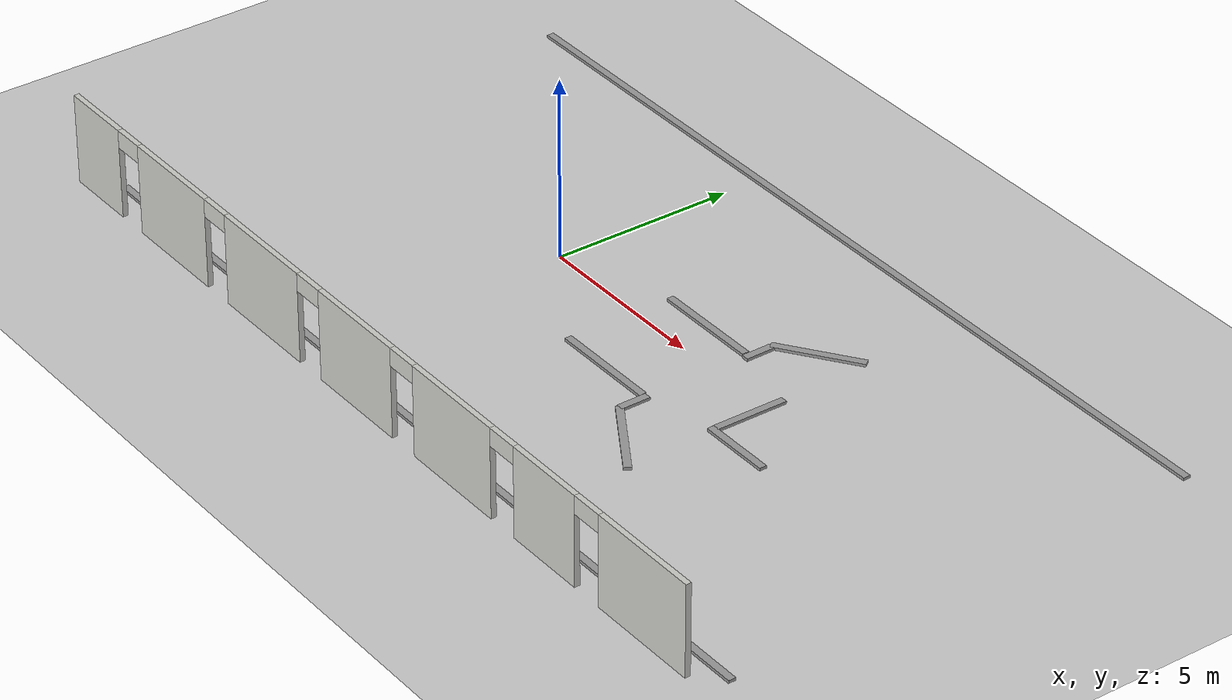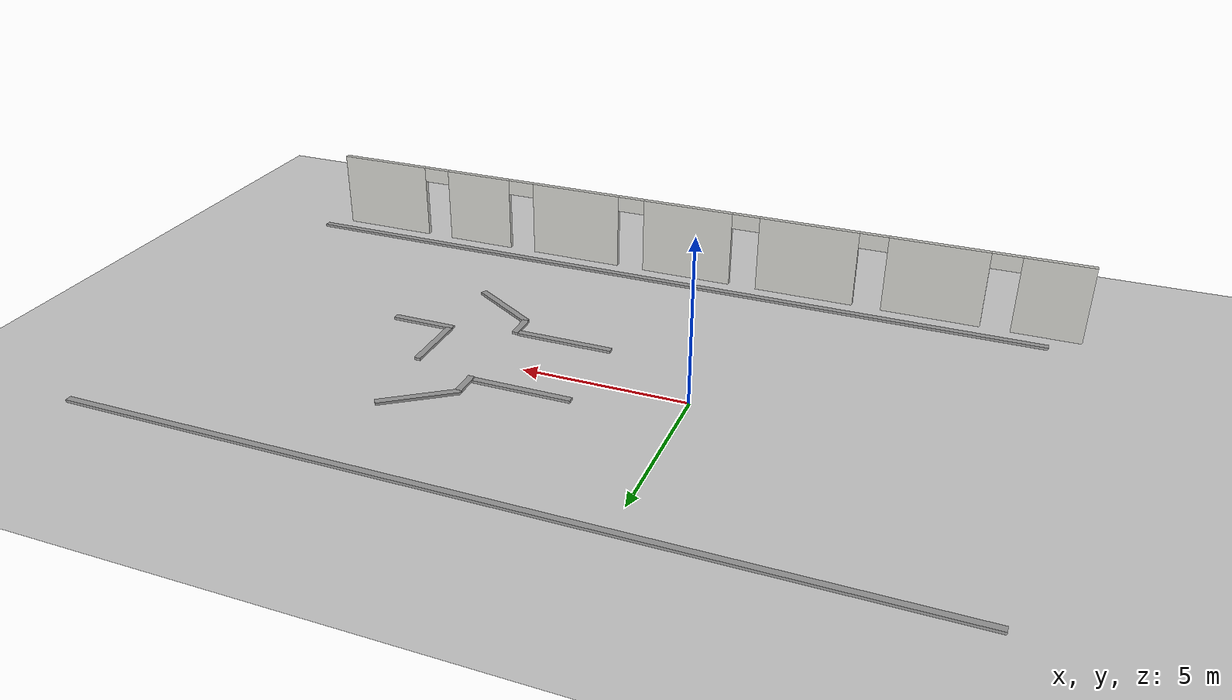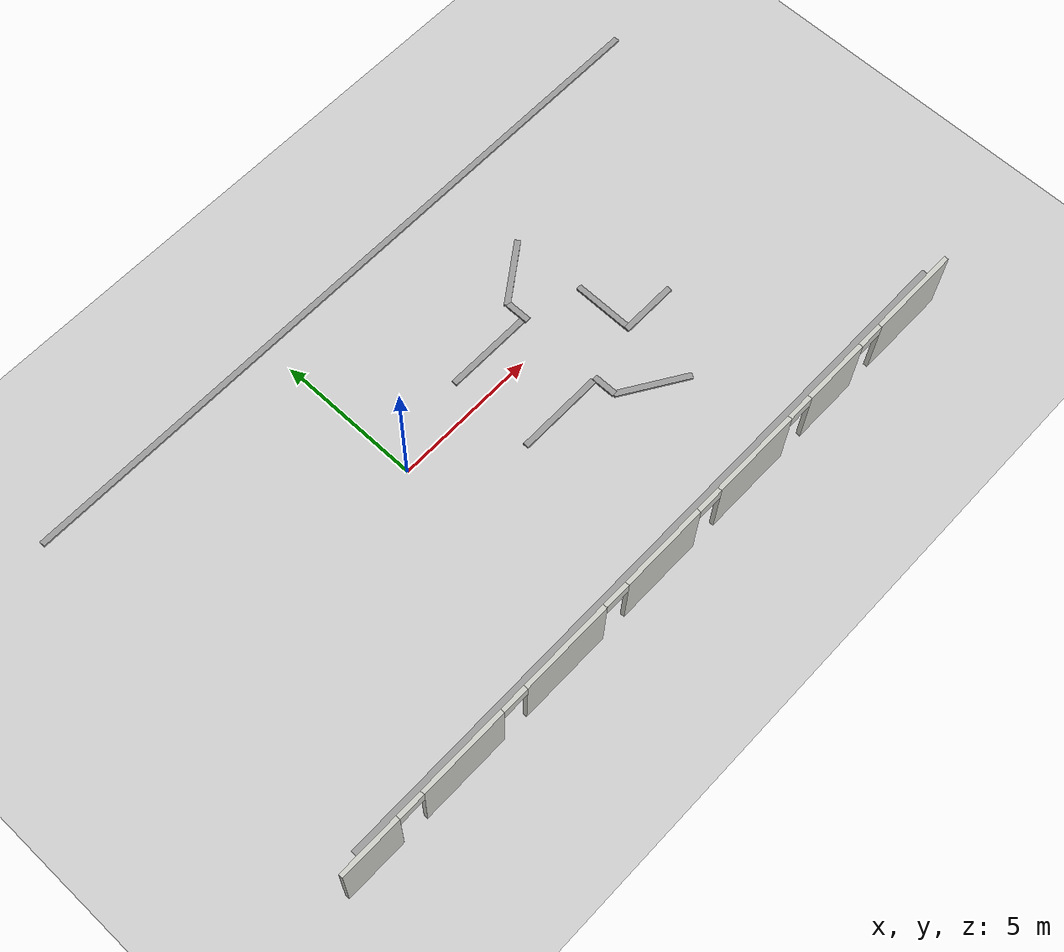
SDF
<sdf version="1.6">
 <world name="default">
  <model name="ground_plane">
   <static>1</static>
   <link name="link">
    <collision name="collision">
     <geometry><plane><normal>0 0 1</normal><size>100 100</size></plane></geometry>
     <surface><friction><ode><mu>100</mu><mu2>50</mu2></ode></friction></surface>
    </collision>
    <visual name="visual">
     <cast_shadows>0</cast_shadows>
     <geometry><plane><normal>0 0 1</normal><size>100 100</size></plane></geometry>
     <material>
      <script><uri>file://media/materials/scripts/gazebo.material</uri><name>Gazebo/Grey</name></script>
     </material>
    </visual>
   </link>
  </model>
  <model name="brick_box_3x1x3">
   <link name="link_1_clone_0">
    <pose>10.5728 -2.79376 0.5 0 -0 0</pose>
    <inertial>
     <mass>1</mass>
     <inertia>
      <ixx>0.166667</ixx>
      <ixy>0</ixy>
      <ixz>0</ixz>
      <iyy>0.166667</iyy>
      <iyz>0</iyz>
      <izz>0.166667</izz>
     </inertia>
    </inertial>
    <visual name="visual">
     <pose>0 0 -0.5 0 -0 0</pose>
     <geometry><box><size>25 0.2 0.1</size></box></geometry>
     <material>
      <lighting>1</lighting>
      <script><uri>file://media/materials/scripts/gazebo.material</uri><name>Gazebo/Grey</name></script>
      <ambient>0.3 0.3 0.3 1</ambient>
      <diffuse>0.7 0.7 0.7 1</diffuse>
      <specular>0.01 0.01 0.01 1</specular>
      <emissive>0 0 0 1</emissive>
      <shader type="vertex"><normal_map>__default__</normal_map></shader>
     </material>
    </visual>
    <collision name="collision">
     <pose>0 0 -0.5 0 -0 0</pose>
     <geometry><box><size>25 0.2 0.2</size></box></geometry>
     <surface>
      <friction>
       <ode><mu>1</mu><mu2>1</mu2><fdir1>0 0 0</fdir1><slip1>0</slip1><slip2>0</slip2></ode>
       <torsional>
        <coefficient>1</coefficient>
        <patch_radius>0</patch_radius>
        <surface_radius>0</surface_radius>
        <use_patch_radius>1</use_patch_radius>
        <ode><slip>0</slip></ode>
       </torsional>
      </friction>
      <bounce><restitution_coefficient>0</restitution_coefficient><threshold>1e+06</threshold></bounce>
      <contact>
       <collide_without_contact>0</collide_without_contact>
       <collide_without_contact_bitmask>1</collide_without_contact_bitmask>
       <collide_bitmask>1</collide_bitmask>
       <ode>
        <soft_cfm>0</soft_cfm>
        <soft_erp>0.2</soft_erp>
        <kp>1e+13</kp>
        <kd>1</kd>
        <max_vel>0.01</max_vel>
        <min_depth>0</min_depth>
       </ode>
       <bullet>
        <split_impulse>1</split_impulse>
        <split_impulse_penetration_threshold>-0.01</split_impulse_penetration_threshold>
        <soft_cfm>0</soft_cfm>
        <soft_erp>0.2</soft_erp>
        <kp>1e+13</kp>
        <kd>1</kd>
       </bullet>
      </contact>
     </surface>
    </collision>
   </link>
   <link name="link_1_clone_0_clone">
    <pose>10.6572 10.185 0.5 0 -0 0</pose>
    <inertial>
     <mass>1</mass>
     <inertia>
      <ixx>0.166667</ixx>
      <ixy>0</ixy>
      <ixz>0</ixz>
      <iyy>0.166667</iyy>
      <iyz>0</iyz>
      <izz>0.166667</izz>
     </inertia>
    </inertial>
    <visual name="visual">
     <pose>0 0 -0.5 0 -0 0</pose>
     <geometry><box><size>25 0.2 0.1</size></box></geometry>
     <material>
      <lighting>1</lighting>
      <script><uri>file://media/materials/scripts/gazebo.material</uri><name>Gazebo/Grey</name></script>
      <ambient>0.3 0.3 0.3 1</ambient>
      <diffuse>0.7 0.7 0.7 1</diffuse>
      <specular>0.01 0.01 0.01 1</specular>
      <emissive>0 0 0 1</emissive>
      <shader type="vertex"><normal_map>__default__</normal_map></shader>
     </material>
    </visual>
    <collision name="collision">
     <pose>0 0 -0.5 0 -0 0</pose>
     <geometry><box><size>25 0.2 0.2</size></box></geometry>
     <surface>
      <friction>
       <ode><mu>1</mu><mu2>1</mu2><fdir1>0 0 0</fdir1><slip1>0</slip1><slip2>0</slip2></ode>
       <torsional>
        <coefficient>1</coefficient>
        <patch_radius>0</patch_radius>
        <surface_radius>0</surface_radius>
        <use_patch_radius>1</use_patch_radius>
        <ode><slip>0</slip></ode>
       </torsional>
      </friction>
      <bounce><restitution_coefficient>0</restitution_coefficient><threshold>1e+06</threshold></bounce>
      <contact>
       <collide_without_contact>0</collide_without_contact>
       <collide_without_contact_bitmask>1</collide_without_contact_bitmask>
       <collide_bitmask>1</collide_bitmask>
       <ode>
        <soft_cfm>0</soft_cfm>
        <soft_erp>0.2</soft_erp>
        <kp>1e+13</kp>
        <kd>1</kd>
        <max_vel>0.01</max_vel>
        <min_depth>0</min_depth>
       </ode>
       <bullet>
        <split_impulse>1</split_impulse>
        <split_impulse_penetration_threshold>-0.01</split_impulse_penetration_threshold>
        <soft_cfm>0</soft_cfm>
        <soft_erp>0.2</soft_erp>
        <kp>1e+13</kp>
        <kd>1</kd>
       </bullet>
      </contact>
     </surface>
    </collision>
   </link>
   <link name="link_1_clone_3_clone_10_clone_1_clone_2">
    <pose>13.2467 1.79727 0.5 0 0 -1.56821</pose>
    <inertial>
     <mass>0.239353</mass>
     <inertia>
      <ixx>0.0406036</ixx>
      <ixy>0</ixy>
      <ixz>0</ixz>
      <iyy>0.0210496</iyy>
      <iyz>0</iyz>
      <izz>0.0217608</izz>
     </inertia>
    </inertial>
    <visual name="visual">
     <pose>0 0 -0.5 0 -0 0</pose>
     <geometry><box><size>0.823187 0.203535 0.1</size></box></geometry>
     <material>
      <lighting>1</lighting>
      <script><uri>file://media/materials/scripts/gazebo.material</uri><name>Gazebo/Grey</name></script>
      <ambient>0.3 0.3 0.3 1</ambient>
      <diffuse>0.7 0.7 0.7 1</diffuse>
      <specular>0.01 0.01 0.01 1</specular>
      <emissive>0 0 0 1</emissive>
      <shader type="vertex"><normal_map>__default__</normal_map></shader>
     </material>
    </visual>
    <collision name="collision">
     <pose>0 0 -0.5 0 -0 0</pose>
     <geometry><box><size>0.823187 0.203535 0.2</size></box></geometry>
     <surface>
      <friction>
       <ode><mu>1</mu><mu2>1</mu2><fdir1>0 0 0</fdir1><slip1>0</slip1><slip2>0</slip2></ode>
       <torsional>
        <coefficient>1</coefficient>
        <patch_radius>0</patch_radius>
        <surface_radius>0</surface_radius>
        <use_patch_radius>1</use_patch_radius>
        <ode><slip>0</slip></ode>
       </torsional>
      </friction>
      <bounce><restitution_coefficient>0</restitution_coefficient><threshold>1e+06</threshold></bounce>
      <contact>
       <collide_without_contact>0</collide_without_contact>
       <collide_without_contact_bitmask>1</collide_without_contact_bitmask>
       <collide_bitmask>1</collide_bitmask>
       <ode>
        <soft_cfm>0</soft_cfm>
        <soft_erp>0.2</soft_erp>
        <kp>1e+13</kp>
        <kd>1</kd>
        <max_vel>0.01</max_vel>
        <min_depth>0</min_depth>
       </ode>
       <bullet>
        <split_impulse>1</split_impulse>
        <split_impulse_penetration_threshold>-0.01</split_impulse_penetration_threshold>
        <soft_cfm>0</soft_cfm>
        <soft_erp>0.2</soft_erp>
        <kp>1e+13</kp>
        <kd>1</kd>
       </bullet>
      </contact>
     </surface>
    </collision>
   </link>
   <link name="link_1_clone_3_clone_10_clone_1_clone_3">
    <pose>13.302 5.42831 0.5 0 0 -1.56821</pose>
    <inertial>
     <mass>0.239353</mass>
     <inertia>
      <ixx>0.0406036</ixx>
      <ixy>0</ixy>
      <ixz>0</ixz>
      <iyy>0.0210496</iyy>
      <iyz>0</iyz>
      <izz>0.0217608</izz>
     </inertia>
    </inertial>
    <visual name="visual">
     <pose>0 0 -0.5 0 -0 0</pose>
     <geometry><box><size>0.823187 0.203535 0.1</size></box></geometry>
     <material>
      <lighting>1</lighting>
      <script><uri>file://media/materials/scripts/gazebo.material</uri><name>Gazebo/Grey</name></script>
      <ambient>0.3 0.3 0.3 1</ambient>
      <diffuse>0.7 0.7 0.7 1</diffuse>
      <specular>0.01 0.01 0.01 1</specular>
      <emissive>0 0 0 1</emissive>
      <shader type="vertex"><normal_map>__default__</normal_map></shader>
     </material>
    </visual>
    <collision name="collision">
     <pose>0 0 -0.5 0 -0 0</pose>
     <geometry><box><size>0.823187 0.203535 0.2</size></box></geometry>
     <surface>
      <friction>
       <ode><mu>1</mu><mu2>1</mu2><fdir1>0 0 0</fdir1><slip1>0</slip1><slip2>0</slip2></ode>
       <torsional>
        <coefficient>1</coefficient>
        <patch_radius>0</patch_radius>
        <surface_radius>0</surface_radius>
        <use_patch_radius>1</use_patch_radius>
        <ode><slip>0</slip></ode>
       </torsional>
      </friction>
      <bounce><restitution_coefficient>0</restitution_coefficient><threshold>1e+06</threshold></bounce>
      <contact>
       <collide_without_contact>0</collide_without_contact>
       <collide_without_contact_bitmask>1</collide_without_contact_bitmask>
       <collide_bitmask>1</collide_bitmask>
       <ode>
        <soft_cfm>0</soft_cfm>
        <soft_erp>0.2</soft_erp>
        <kp>1e+13</kp>
        <kd>1</kd>
        <max_vel>0.01</max_vel>
        <min_depth>0</min_depth>
       </ode>
       <bullet>
        <split_impulse>1</split_impulse>
        <split_impulse_penetration_threshold>-0.01</split_impulse_penetration_threshold>
        <soft_cfm>0</soft_cfm>
        <soft_erp>0.2</soft_erp>
        <kp>1e+13</kp>
        <kd>1</kd>
       </bullet>
      </contact>
     </surface>
    </collision>
   </link>
   <link name="link_1_clone_3_clone_10_clone_4_clone">
    <pose>14.2781 0.747531 0.5 0 0 -0.55659</pose>
    <inertial>
     <mass>0.726749</mass>
     <inertia>
      <ixx>0.123285</ixx>
      <ixy>0</ixy>
      <ixz>0</ixz>
      <iyy>0.0914481</iyy>
      <iyz>0</iyz>
      <izz>0.0936075</izz>
     </inertia>
    </inertial>
    <visual name="visual">
     <pose>0 0 -0.5 0 -0 0</pose>
     <geometry><box><size>2.49943 0.203535 0.1</size></box></geometry>
     <material>
      <lighting>1</lighting>
      <script><uri>file://media/materials/scripts/gazebo.material</uri><name>Gazebo/Grey</name></script>
      <ambient>0.3 0.3 0.3 1</ambient>
      <diffuse>0.7 0.7 0.7 1</diffuse>
      <specular>0.01 0.01 0.01 1</specular>
      <emissive>0 0 0 1</emissive>
      <shader type="vertex"><normal_map>__default__</normal_map></shader>
     </material>
    </visual>
    <collision name="collision">
     <pose>0 0 -0.5 0 -0 0</pose>
     <geometry><box><size>2.49943 0.203535 0.2</size></box></geometry>
     <surface>
      <friction>
       <ode><mu>1</mu><mu2>1</mu2><fdir1>0 0 0</fdir1><slip1>0</slip1><slip2>0</slip2></ode>
       <torsional>
        <coefficient>1</coefficient>
        <patch_radius>0</patch_radius>
        <surface_radius>0</surface_radius>
        <use_patch_radius>1</use_patch_radius>
        <ode><slip>0</slip></ode>
       </torsional>
      </friction>
      <bounce><restitution_coefficient>0</restitution_coefficient><threshold>1e+06</threshold></bounce>
      <contact>
       <collide_without_contact>0</collide_without_contact>
       <collide_without_contact_bitmask>1</collide_without_contact_bitmask>
       <collide_bitmask>1</collide_bitmask>
       <ode>
        <soft_cfm>0</soft_cfm>
        <soft_erp>0.2</soft_erp>
        <kp>1e+13</kp>
        <kd>1</kd>
        <max_vel>0.01</max_vel>
        <min_depth>0</min_depth>
       </ode>
       <bullet>
        <split_impulse>1</split_impulse>
        <split_impulse_penetration_threshold>-0.01</split_impulse_penetration_threshold>
        <soft_cfm>0</soft_cfm>
        <soft_erp>0.2</soft_erp>
        <kp>1e+13</kp>
        <kd>1</kd>
       </bullet>
      </contact>
     </surface>
    </collision>
   </link>
   <link name="link_1_clone_3_clone_10_clone_4_clone_clone">
    <pose>14.2088 6.53336 0.5 0 0 -2.52567</pose>
    <inertial>
     <mass>0.693051</mass>
     <inertia>
      <ixx>0.117568</ixx>
      <ixy>0</ixy>
      <ixz>0</ixz>
      <iyy>0.0845397</iyy>
      <iyz>0</iyz>
      <izz>0.086599</izz>
     </inertia>
    </inertial>
    <visual name="visual">
     <pose>0 0 -0.5 0 -0 0</pose>
     <geometry><box><size>2.38354 0.203535 0.1</size></box></geometry>
     <material>
      <lighting>1</lighting>
      <script><uri>file://media/materials/scripts/gazebo.material</uri><name>Gazebo/Grey</name></script>
      <ambient>0.3 0.3 0.3 1</ambient>
      <diffuse>0.7 0.7 0.7 1</diffuse>
      <specular>0.01 0.01 0.01 1</specular>
      <emissive>0 0 0 1</emissive>
      <shader type="vertex"><normal_map>__default__</normal_map></shader>
     </material>
    </visual>
    <collision name="collision">
     <pose>0 0 -0.5 0 -0 0</pose>
     <geometry><box><size>2.38354 0.203535 0.2</size></box></geometry>
     <surface>
      <friction>
       <ode><mu>1</mu><mu2>1</mu2><fdir1>0 0 0</fdir1><slip1>0</slip1><slip2>0</slip2></ode>
       <torsional>
        <coefficient>1</coefficient>
        <patch_radius>0</patch_radius>
        <surface_radius>0</surface_radius>
        <use_patch_radius>1</use_patch_radius>
        <ode><slip>0</slip></ode>
       </torsional>
      </friction>
      <bounce><restitution_coefficient>0</restitution_coefficient><threshold>1e+06</threshold></bounce>
      <contact>
       <collide_without_contact>0</collide_without_contact>
       <collide_without_contact_bitmask>1</collide_without_contact_bitmask>
       <collide_bitmask>1</collide_bitmask>
       <ode>
        <soft_cfm>0</soft_cfm>
        <soft_erp>0.2</soft_erp>
        <kp>1e+13</kp>
        <kd>1</kd>
        <max_vel>0.01</max_vel>
        <min_depth>0</min_depth>
       </ode>
       <bullet>
        <split_impulse>1</split_impulse>
        <split_impulse_penetration_threshold>-0.01</split_impulse_penetration_threshold>
        <soft_cfm>0</soft_cfm>
        <soft_erp>0.2</soft_erp>
        <kp>1e+13</kp>
        <kd>1</kd>
       </bullet>
      </contact>
     </surface>
    </collision>
   </link>
   <link name="link_1_clone_3_clone_4">
    <pose>11.6739 5.14783 0.5 0 -0 0</pose>
    <inertial>
     <mass>1</mass>
     <inertia>
      <ixx>0.166667</ixx>
      <ixy>0</ixy>
      <ixz>0</ixz>
      <iyy>0.166667</iyy>
      <iyz>0</iyz>
      <izz>0.166667</izz>
     </inertia>
    </inertial>
    <visual name="visual">
     <pose>0 0 -0.5 0 -0 0</pose>
     <geometry><box><size>3 0.2 0.1</size></box></geometry>
     <material>
      <lighting>1</lighting>
      <script><uri>file://media/materials/scripts/gazebo.material</uri><name>Gazebo/Grey</name></script>
      <ambient>0.3 0.3 0.3 1</ambient>
      <diffuse>0.7 0.7 0.7 1</diffuse>
      <specular>0.01 0.01 0.01 1</specular>
      <emissive>0 0 0 1</emissive>
      <shader type="vertex"><normal_map>__default__</normal_map></shader>
     </material>
    </visual>
    <collision name="collision">
     <pose>0 0 -0.5 0 -0 0</pose>
     <geometry><box><size>3 0.2 0.2</size></box></geometry>
     <surface>
      <friction>
       <ode><mu>1</mu><mu2>1</mu2><fdir1>0 0 0</fdir1><slip1>0</slip1><slip2>0</slip2></ode>
       <torsional>
        <coefficient>1</coefficient>
        <patch_radius>0</patch_radius>
        <surface_radius>0</surface_radius>
        <use_patch_radius>1</use_patch_radius>
        <ode><slip>0</slip></ode>
       </torsional>
      </friction>
      <bounce><restitution_coefficient>0</restitution_coefficient><threshold>1e+06</threshold></bounce>
      <contact>
       <collide_without_contact>0</collide_without_contact>
       <collide_without_contact_bitmask>1</collide_without_contact_bitmask>
       <collide_bitmask>1</collide_bitmask>
       <ode>
        <soft_cfm>0</soft_cfm>
        <soft_erp>0.2</soft_erp>
        <kp>1e+13</kp>
        <kd>1</kd>
        <max_vel>0.01</max_vel>
        <min_depth>0</min_depth>
       </ode>
       <bullet>
        <split_impulse>1</split_impulse>
        <split_impulse_penetration_threshold>-0.01</split_impulse_penetration_threshold>
        <soft_cfm>0</soft_cfm>
        <soft_erp>0.2</soft_erp>
        <kp>1e+13</kp>
        <kd>1</kd>
       </bullet>
      </contact>
     </surface>
    </collision>
   </link>
   <link name="link_1_clone_3_clone_5">
    <pose>11.6368 2.14783 0.5 0 -0 0</pose>
    <inertial>
     <mass>1</mass>
     <inertia>
      <ixx>0.166667</ixx>
      <ixy>0</ixy>
      <ixz>0</ixz>
      <iyy>0.166667</iyy>
      <iyz>0</iyz>
      <izz>0.166667</izz>
     </inertia>
    </inertial>
    <visual name="visual">
     <pose>0 0 -0.5 0 -0 0</pose>
     <geometry><box><size>3 0.2 0.1</size></box></geometry>
     <material>
      <lighting>1</lighting>
      <script><uri>file://media/materials/scripts/gazebo.material</uri><name>Gazebo/Grey</name></script>
      <ambient>0.3 0.3 0.3 1</ambient>
      <diffuse>0.7 0.7 0.7 1</diffuse>
      <specular>0.01 0.01 0.01 1</specular>
      <emissive>0 0 0 1</emissive>
      <shader type="vertex"><normal_map>__default__</normal_map></shader>
     </material>
    </visual>
    <collision name="collision">
     <pose>0 0 -0.5 0 -0 0</pose>
     <geometry><box><size>3 0.2 0.2</size></box></geometry>
     <surface>
      <friction>
       <ode><mu>1</mu><mu2>1</mu2><fdir1>0 0 0</fdir1><slip1>0</slip1><slip2>0</slip2></ode>
       <torsional>
        <coefficient>1</coefficient>
        <patch_radius>0</patch_radius>
        <surface_radius>0</surface_radius>
        <use_patch_radius>1</use_patch_radius>
        <ode><slip>0</slip></ode>
       </torsional>
      </friction>
      <bounce><restitution_coefficient>0</restitution_coefficient><threshold>1e+06</threshold></bounce>
      <contact>
       <collide_without_contact>0</collide_without_contact>
       <collide_without_contact_bitmask>1</collide_without_contact_bitmask>
       <collide_bitmask>1</collide_bitmask>
       <ode>
        <soft_cfm>0</soft_cfm>
        <soft_erp>0.2</soft_erp>
        <kp>1e+13</kp>
        <kd>1</kd>
        <max_vel>0.01</max_vel>
        <min_depth>0</min_depth>
       </ode>
       <bullet>
        <split_impulse>1</split_impulse>
        <split_impulse_penetration_threshold>-0.01</split_impulse_penetration_threshold>
        <soft_cfm>0</soft_cfm>
        <soft_erp>0.2</soft_erp>
        <kp>1e+13</kp>
        <kd>1</kd>
       </bullet>
      </contact>
     </surface>
    </collision>
   </link>
   <link name="link_1_clone_3_clone_6_clone_clone_0">
    <pose>16.1511 2.60584 0.5 0 -0 0</pose>
    <inertial>
     <mass>0.667428</mass>
     <inertia>
      <ixx>0.111238</ixx>
      <ixy>0</ixy>
      <ixz>0</ixz>
      <iyy>0.0803952</iyy>
      <iyz>0</iyz>
      <izz>0.0803952</izz>
     </inertia>
    </inertial>
    <visual name="visual">
     <pose>0 0 -0.5 0 -0 0</pose>
     <geometry><box><size>2.00229 0.2 0.1</size></box></geometry>
     <material>
      <lighting>1</lighting>
      <script><uri>file://media/materials/scripts/gazebo.material</uri><name>Gazebo/Grey</name></script>
      <ambient>0.3 0.3 0.3 1</ambient>
      <diffuse>0.7 0.7 0.7 1</diffuse>
      <specular>0.01 0.01 0.01 1</specular>
      <emissive>0 0 0 1</emissive>
      <shader type="vertex"><normal_map>__default__</normal_map></shader>
     </material>
    </visual>
    <collision name="collision">
     <pose>0 0 -0.5 0 -0 0</pose>
     <geometry><box><size>2.00229 0.2 0.2</size></box></geometry>
     <surface>
      <friction>
       <ode><mu>1</mu><mu2>1</mu2><fdir1>0 0 0</fdir1><slip1>0</slip1><slip2>0</slip2></ode>
       <torsional>
        <coefficient>1</coefficient>
        <patch_radius>0</patch_radius>
        <surface_radius>0</surface_radius>
        <use_patch_radius>1</use_patch_radius>
        <ode><slip>0</slip></ode>
       </torsional>
      </friction>
      <bounce><restitution_coefficient>0</restitution_coefficient><threshold>1e+06</threshold></bounce>
      <contact>
       <collide_without_contact>0</collide_without_contact>
       <collide_without_contact_bitmask>1</collide_without_contact_bitmask>
       <collide_bitmask>1</collide_bitmask>
       <ode>
        <soft_cfm>0</soft_cfm>
        <soft_erp>0.2</soft_erp>
        <kp>1e+13</kp>
        <kd>1</kd>
        <max_vel>0.01</max_vel>
        <min_depth>0</min_depth>
       </ode>
       <bullet>
        <split_impulse>1</split_impulse>
        <split_impulse_penetration_threshold>-0.01</split_impulse_penetration_threshold>
        <soft_cfm>0</soft_cfm>
        <soft_erp>0.2</soft_erp>
        <kp>1e+13</kp>
        <kd>1</kd>
       </bullet>
      </contact>
     </surface>
    </collision>
   </link>
   <link name="link_1_clone_3_clone_6_clone_clone_clone_clone">
    <pose>15.2461 3.68097 0.5 0 0 -1.57783</pose>
    <inertial>
     <mass>0.667428</mass>
     <inertia>
      <ixx>0.111238</ixx>
      <ixy>0</ixy>
      <ixz>0</ixz>
      <iyy>0.0803952</iyy>
      <iyz>0</iyz>
      <izz>0.0803952</izz>
     </inertia>
    </inertial>
    <visual name="visual">
     <pose>0 0 -0.5 0 -0 0</pose>
     <geometry><box><size>2.00229 0.2 0.1</size></box></geometry>
     <material>
      <lighting>1</lighting>
      <script><uri>file://media/materials/scripts/gazebo.material</uri><name>Gazebo/Grey</name></script>
      <ambient>0.3 0.3 0.3 1</ambient>
      <diffuse>0.7 0.7 0.7 1</diffuse>
      <specular>0.01 0.01 0.01 1</specular>
      <emissive>0 0 0 1</emissive>
      <shader type="vertex"><normal_map>__default__</normal_map></shader>
     </material>
    </visual>
    <collision name="collision">
     <pose>0 0 -0.5 0 -0 0</pose>
     <geometry><box><size>2.00229 0.2 0.2</size></box></geometry>
     <surface>
      <friction>
       <ode><mu>1</mu><mu2>1</mu2><fdir1>0 0 0</fdir1><slip1>0</slip1><slip2>0</slip2></ode>
       <torsional>
        <coefficient>1</coefficient>
        <patch_radius>0</patch_radius>
        <surface_radius>0</surface_radius>
        <use_patch_radius>1</use_patch_radius>
        <ode><slip>0</slip></ode>
       </torsional>
      </friction>
      <bounce><restitution_coefficient>0</restitution_coefficient><threshold>1e+06</threshold></bounce>
      <contact>
       <collide_without_contact>0</collide_without_contact>
       <collide_without_contact_bitmask>1</collide_without_contact_bitmask>
       <collide_bitmask>1</collide_bitmask>
       <ode>
        <soft_cfm>0</soft_cfm>
        <soft_erp>0.2</soft_erp>
        <kp>1e+13</kp>
        <kd>1</kd>
        <max_vel>0.01</max_vel>
        <min_depth>0</min_depth>
       </ode>
       <bullet>
        <split_impulse>1</split_impulse>
        <split_impulse_penetration_threshold>-0.01</split_impulse_penetration_threshold>
        <soft_cfm>0</soft_cfm>
        <soft_erp>0.2</soft_erp>
        <kp>1e+13</kp>
        <kd>1</kd>
       </bullet>
      </contact>
     </surface>
    </collision>
   </link>
   <static>1</static>
   <pose>-7.10254 -4.10597 0 0 -0 0</pose>
  </model>
  <model name="CV1_giardino2">
   <link name="Wall_9">
    <pose>0.202026 -7.50143 0 0 -0 3.14159</pose>
    <visual name="Wall_9_Visual_0">
     <pose>-11.0382 0 1.25 0 -0 0</pose>
     <geometry><box><size>3.17352 0.15 2.5</size></box></geometry>
     <material>
      <script><uri>file://media/materials/scripts/gazebo.material</uri><name>Gazebo/CeilingTiled</name></script>
      <ambient>1 1 1 1</ambient>
      <diffuse>1 1 1 1</diffuse>
      <specular>0 0 0 1</specular>
      <emissive>0 0 0 1</emissive>
     </material>
    </visual>
    <visual name="Wall_9_Visual_1">
     <pose>-7.39122 0 1.25 0 -0 0</pose>
     <geometry><box><size>2.32053 0.15 2.5</size></box></geometry>
     <material>
      <script><uri>file://media/materials/scripts/gazebo.material</uri><name>Gazebo/CeilingTiled</name></script>
      <ambient>1 1 1 1</ambient>
      <diffuse>1 1 1 1</diffuse>
      <specular>0 0 0 1</specular>
      <emissive>0 0 0 1</emissive>
     </material>
    </visual>
    <visual name="Wall_9_Visual_2">
     <pose>-3.79149 0 1.25 0 -0 0</pose>
     <geometry><box><size>3.07892 0.15 2.5</size></box></geometry>
     <material>
      <script><uri>file://media/materials/scripts/gazebo.material</uri><name>Gazebo/CeilingTiled</name></script>
      <ambient>1 1 1 1</ambient>
      <diffuse>1 1 1 1</diffuse>
      <specular>0 0 0 1</specular>
      <emissive>0 0 0 1</emissive>
     </material>
    </visual>
    <visual name="Wall_9_Visual_3">
     <pose>0.145317 0 1.25 0 -0 0</pose>
     <geometry><box><size>2.99471 0.15 2.5</size></box></geometry>
     <material>
      <script><uri>file://media/materials/scripts/gazebo.material</uri><name>Gazebo/CeilingTiled</name></script>
      <ambient>1 1 1 1</ambient>
      <diffuse>1 1 1 1</diffuse>
      <specular>0 0 0 1</specular>
      <emissive>0 0 0 1</emissive>
     </material>
    </visual>
    <visual name="Wall_9_Visual_5">
     <pose>8.1242 0 1.25 0 -0 0</pose>
     <geometry><box><size>3.03681 0.15 2.5</size></box></geometry>
     <material>
      <script><uri>file://media/materials/scripts/gazebo.material</uri><name>Gazebo/CeilingTiled</name></script>
      <ambient>1 1 1 1</ambient>
      <diffuse>1 1 1 1</diffuse>
      <specular>0 0 0 1</specular>
      <emissive>0 0 0 1</emissive>
     </material>
    </visual>
    <visual name="Wall_9_Visual_4">
     <pose>4.12423 0 1.25 0 -0 0</pose>
     <geometry><box><size>3.16313 0.15 2.5</size></box></geometry>
     <material>
      <script><uri>file://media/materials/scripts/gazebo.material</uri><name>Gazebo/CeilingTiled</name></script>
      <ambient>1 1 1 1</ambient>
      <diffuse>1 1 1 1</diffuse>
      <specular>0 0 0 1</specular>
      <emissive>0 0 0 1</emissive>
     </material>
    </visual>
    <visual name="Wall_9_Visual_6">
     <pose>11.5838 0 1.25 0 -0 0</pose>
     <geometry><box><size>2.08239 0.15 2.5</size></box></geometry>
     <material>
      <script><uri>file://media/materials/scripts/gazebo.material</uri><name>Gazebo/CeilingTiled</name></script>
      <ambient>1 1 1 1</ambient>
      <diffuse>1 1 1 1</diffuse>
      <specular>0 0 0 1</specular>
      <emissive>0 0 0 1</emissive>
     </material>
    </visual>
    <visual name="Wall_9_Visual_8">
     <pose>-5.78095 0 2.25 0 -0 0</pose>
     <geometry><box><size>0.9 0.15 0.5</size></box></geometry>
     <material>
      <script><uri>file://media/materials/scripts/gazebo.material</uri><name>Gazebo/CeilingTiled</name></script>
      <ambient>1 1 1 1</ambient>
      <diffuse>1 1 1 1</diffuse>
      <specular>0 0 0 1</specular>
      <emissive>0 0 0 1</emissive>
     </material>
    </visual>
    <visual name="Wall_9_Visual_7">
     <pose>-9.00148 0 2.25 0 -0 0</pose>
     <geometry><box><size>0.9 0.15 0.5</size></box></geometry>
     <material>
      <script><uri>file://media/materials/scripts/gazebo.material</uri><name>Gazebo/CeilingTiled</name></script>
      <ambient>1 1 1 1</ambient>
      <diffuse>1 1 1 1</diffuse>
      <specular>0 0 0 1</specular>
      <emissive>0 0 0 1</emissive>
     </material>
    </visual>
    <visual name="Wall_9_Visual_9">
     <pose>-1.80204 0 2.25 0 -0 0</pose>
     <geometry><box><size>0.9 0.15 0.5</size></box></geometry>
     <material>
      <script><uri>file://media/materials/scripts/gazebo.material</uri><name>Gazebo/CeilingTiled</name></script>
      <ambient>1 1 1 1</ambient>
      <diffuse>1 1 1 1</diffuse>
      <specular>0 0 0 1</specular>
      <emissive>0 0 0 1</emissive>
     </material>
    </visual>
    <visual name="Wall_9_Visual_10">
     <pose>2.09267 0 2.25 0 -0 0</pose>
     <geometry><box><size>0.9 0.15 0.5</size></box></geometry>
     <material>
      <script><uri>file://media/materials/scripts/gazebo.material</uri><name>Gazebo/CeilingTiled</name></script>
      <ambient>1 1 1 1</ambient>
      <diffuse>1 1 1 1</diffuse>
      <specular>0 0 0 1</specular>
      <emissive>0 0 0 1</emissive>
     </material>
    </visual>
    <visual name="Wall_9_Visual_11">
     <pose>6.1558 0 2.25 0 -0 0</pose>
     <geometry><box><size>0.9 0.15 0.5</size></box></geometry>
     <material>
      <script><uri>file://media/materials/scripts/gazebo.material</uri><name>Gazebo/CeilingTiled</name></script>
      <ambient>1 1 1 1</ambient>
      <diffuse>1 1 1 1</diffuse>
      <specular>0 0 0 1</specular>
      <emissive>0 0 0 1</emissive>
     </material>
    </visual>
    <visual name="Wall_9_Visual_12">
     <pose>10.0926 0 2.25 0 -0 0</pose>
     <geometry><box><size>0.9 0.15 0.5</size></box></geometry>
     <material>
      <script><uri>file://media/materials/scripts/gazebo.material</uri><name>Gazebo/CeilingTiled</name></script>
      <ambient>1 1 1 1</ambient>
      <diffuse>1 1 1 1</diffuse>
      <specular>0 0 0 1</specular>
      <emissive>0 0 0 1</emissive>
     </material>
    </visual>
    <collision name="Wall_9_Collision_0">
     <pose>-11.0382 0 1.25 0 -0 0</pose>
     <geometry><box><size>3.17352 0.15 2.5</size></box></geometry>
     <surface>
      <friction>
       <ode><mu>1</mu><mu2>1</mu2><fdir1>0 0 0</fdir1><slip1>0</slip1><slip2>0</slip2></ode>
       <torsional>
        <coefficient>1</coefficient>
        <patch_radius>0</patch_radius>
        <surface_radius>0</surface_radius>
        <use_patch_radius>1</use_patch_radius>
        <ode><slip>0</slip></ode>
       </torsional>
      </friction>
      <bounce><restitution_coefficient>0</restitution_coefficient><threshold>1e+06</threshold></bounce>
      <contact>
       <collide_without_contact>0</collide_without_contact>
       <collide_without_contact_bitmask>1</collide_without_contact_bitmask>
       <collide_bitmask>1</collide_bitmask>
       <ode>
        <soft_cfm>0</soft_cfm>
        <soft_erp>0.2</soft_erp>
        <kp>1e+13</kp>
        <kd>1</kd>
        <max_vel>0.01</max_vel>
        <min_depth>0</min_depth>
       </ode>
       <bullet>
        <split_impulse>1</split_impulse>
        <split_impulse_penetration_threshold>-0.01</split_impulse_penetration_threshold>
        <soft_cfm>0</soft_cfm>
        <soft_erp>0.2</soft_erp>
        <kp>1e+13</kp>
        <kd>1</kd>
       </bullet>
      </contact>
     </surface>
    </collision>
    <collision name="Wall_9_Collision_1">
     <pose>-7.39122 0 1.25 0 -0 0</pose>
     <geometry><box><size>2.32053 0.15 2.5</size></box></geometry>
     <surface>
      <friction>
       <ode><mu>1</mu><mu2>1</mu2><fdir1>0 0 0</fdir1><slip1>0</slip1><slip2>0</slip2></ode>
       <torsional>
        <coefficient>1</coefficient>
        <patch_radius>0</patch_radius>
        <surface_radius>0</surface_radius>
        <use_patch_radius>1</use_patch_radius>
        <ode><slip>0</slip></ode>
       </torsional>
      </friction>
      <bounce><restitution_coefficient>0</restitution_coefficient><threshold>1e+06</threshold></bounce>
      <contact>
       <collide_without_contact>0</collide_without_contact>
       <collide_without_contact_bitmask>1</collide_without_contact_bitmask>
       <collide_bitmask>1</collide_bitmask>
       <ode>
        <soft_cfm>0</soft_cfm>
        <soft_erp>0.2</soft_erp>
        <kp>1e+13</kp>
        <kd>1</kd>
        <max_vel>0.01</max_vel>
        <min_depth>0</min_depth>
       </ode>
       <bullet>
        <split_impulse>1</split_impulse>
        <split_impulse_penetration_threshold>-0.01</split_impulse_penetration_threshold>
        <soft_cfm>0</soft_cfm>
        <soft_erp>0.2</soft_erp>
        <kp>1e+13</kp>
        <kd>1</kd>
       </bullet>
      </contact>
     </surface>
    </collision>
    <collision name="Wall_9_Collision_3">
     <pose>0.145317 0 1.25 0 -0 0</pose>
     <geometry><box><size>2.99471 0.15 2.5</size></box></geometry>
     <surface>
      <friction>
       <ode><mu>1</mu><mu2>1</mu2><fdir1>0 0 0</fdir1><slip1>0</slip1><slip2>0</slip2></ode>
       <torsional>
        <coefficient>1</coefficient>
        <patch_radius>0</patch_radius>
        <surface_radius>0</surface_radius>
        <use_patch_radius>1</use_patch_radius>
        <ode><slip>0</slip></ode>
       </torsional>
      </friction>
      <bounce><restitution_coefficient>0</restitution_coefficient><threshold>1e+06</threshold></bounce>
      <contact>
       <collide_without_contact>0</collide_without_contact>
       <collide_without_contact_bitmask>1</collide_without_contact_bitmask>
       <collide_bitmask>1</collide_bitmask>
       <ode>
        <soft_cfm>0</soft_cfm>
        <soft_erp>0.2</soft_erp>
        <kp>1e+13</kp>
        <kd>1</kd>
        <max_vel>0.01</max_vel>
        <min_depth>0</min_depth>
       </ode>
       <bullet>
        <split_impulse>1</split_impulse>
        <split_impulse_penetration_threshold>-0.01</split_impulse_penetration_threshold>
        <soft_cfm>0</soft_cfm>
        <soft_erp>0.2</soft_erp>
        <kp>1e+13</kp>
        <kd>1</kd>
       </bullet>
      </contact>
     </surface>
    </collision>
    <collision name="Wall_9_Collision_2">
     <pose>-3.79149 0 1.25 0 -0 0</pose>
     <geometry><box><size>3.07892 0.15 2.5</size></box></geometry>
     <surface>
      <friction>
       <ode><mu>1</mu><mu2>1</mu2><fdir1>0 0 0</fdir1><slip1>0</slip1><slip2>0</slip2></ode>
       <torsional>
        <coefficient>1</coefficient>
        <patch_radius>0</patch_radius>
        <surface_radius>0</surface_radius>
        <use_patch_radius>1</use_patch_radius>
        <ode><slip>0</slip></ode>
       </torsional>
      </friction>
      <bounce><restitution_coefficient>0</restitution_coefficient><threshold>1e+06</threshold></bounce>
      <contact>
       <collide_without_contact>0</collide_without_contact>
       <collide_without_contact_bitmask>1</collide_without_contact_bitmask>
       <collide_bitmask>1</collide_bitmask>
       <ode>
        <soft_cfm>0</soft_cfm>
        <soft_erp>0.2</soft_erp>
        <kp>1e+13</kp>
        <kd>1</kd>
        <max_vel>0.01</max_vel>
        <min_depth>0</min_depth>
       </ode>
       <bullet>
        <split_impulse>1</split_impulse>
        <split_impulse_penetration_threshold>-0.01</split_impulse_penetration_threshold>
        <soft_cfm>0</soft_cfm>
        <soft_erp>0.2</soft_erp>
        <kp>1e+13</kp>
        <kd>1</kd>
       </bullet>
      </contact>
     </surface>
    </collision>
    <collision name="Wall_9_Collision_4">
     <pose>4.12423 0 1.25 0 -0 0</pose>
     <geometry><box><size>3.16313 0.15 2.5</size></box></geometry>
     <surface>
      <friction>
       <ode><mu>1</mu><mu2>1</mu2><fdir1>0 0 0</fdir1><slip1>0</slip1><slip2>0</slip2></ode>
       <torsional>
        <coefficient>1</coefficient>
        <patch_radius>0</patch_radius>
        <surface_radius>0</surface_radius>
        <use_patch_radius>1</use_patch_radius>
        <ode><slip>0</slip></ode>
       </torsional>
      </friction>
      <bounce><restitution_coefficient>0</restitution_coefficient><threshold>1e+06</threshold></bounce>
      <contact>
       <collide_without_contact>0</collide_without_contact>
       <collide_without_contact_bitmask>1</collide_without_contact_bitmask>
       <collide_bitmask>1</collide_bitmask>
       <ode>
        <soft_cfm>0</soft_cfm>
        <soft_erp>0.2</soft_erp>
        <kp>1e+13</kp>
        <kd>1</kd>
        <max_vel>0.01</max_vel>
        <min_depth>0</min_depth>
       </ode>
       <bullet>
        <split_impulse>1</split_impulse>
        <split_impulse_penetration_threshold>-0.01</split_impulse_penetration_threshold>
        <soft_cfm>0</soft_cfm>
        <soft_erp>0.2</soft_erp>
        <kp>1e+13</kp>
        <kd>1</kd>
       </bullet>
      </contact>
     </surface>
    </collision>
    <collision name="Wall_9_Collision_5">
     <pose>8.1242 0 1.25 0 -0 0</pose>
     <geometry><box><size>3.03681 0.15 2.5</size></box></geometry>
     <surface>
      <friction>
       <ode><mu>1</mu><mu2>1</mu2><fdir1>0 0 0</fdir1><slip1>0</slip1><slip2>0</slip2></ode>
       <torsional>
        <coefficient>1</coefficient>
        <patch_radius>0</patch_radius>
        <surface_radius>0</surface_radius>
        <use_patch_radius>1</use_patch_radius>
        <ode><slip>0</slip></ode>
       </torsional>
      </friction>
      <bounce><restitution_coefficient>0</restitution_coefficient><threshold>1e+06</threshold></bounce>
      <contact>
       <collide_without_contact>0</collide_without_contact>
       <collide_without_contact_bitmask>1</collide_without_contact_bitmask>
       <collide_bitmask>1</collide_bitmask>
       <ode>
        <soft_cfm>0</soft_cfm>
        <soft_erp>0.2</soft_erp>
        <kp>1e+13</kp>
        <kd>1</kd>
        <max_vel>0.01</max_vel>
        <min_depth>0</min_depth>
       </ode>
       <bullet>
        <split_impulse>1</split_impulse>
        <split_impulse_penetration_threshold>-0.01</split_impulse_penetration_threshold>
        <soft_cfm>0</soft_cfm>
        <soft_erp>0.2</soft_erp>
        <kp>1e+13</kp>
        <kd>1</kd>
       </bullet>
      </contact>
     </surface>
    </collision>
    <collision name="Wall_9_Collision_6">
     <pose>11.5838 0 1.25 0 -0 0</pose>
     <geometry><box><size>2.08239 0.15 2.5</size></box></geometry>
     <surface>
      <friction>
       <ode><mu>1</mu><mu2>1</mu2><fdir1>0 0 0</fdir1><slip1>0</slip1><slip2>0</slip2></ode>
       <torsional>
        <coefficient>1</coefficient>
        <patch_radius>0</patch_radius>
        <surface_radius>0</surface_radius>
        <use_patch_radius>1</use_patch_radius>
        <ode><slip>0</slip></ode>
       </torsional>
      </friction>
      <bounce><restitution_coefficient>0</restitution_coefficient><threshold>1e+06</threshold></bounce>
      <contact>
       <collide_without_contact>0</collide_without_contact>
       <collide_without_contact_bitmask>1</collide_without_contact_bitmask>
       <collide_bitmask>1</collide_bitmask>
       <ode>
        <soft_cfm>0</soft_cfm>
        <soft_erp>0.2</soft_erp>
        <kp>1e+13</kp>
        <kd>1</kd>
        <max_vel>0.01</max_vel>
        <min_depth>0</min_depth>
       </ode>
       <bullet>
        <split_impulse>1</split_impulse>
        <split_impulse_penetration_threshold>-0.01</split_impulse_penetration_threshold>
        <soft_cfm>0</soft_cfm>
        <soft_erp>0.2</soft_erp>
        <kp>1e+13</kp>
        <kd>1</kd>
       </bullet>
      </contact>
     </surface>
    </collision>
    <collision name="Wall_9_Collision_7">
     <pose>-9.00148 0 2.25 0 -0 0</pose>
     <geometry><box><size>0.9 0.15 0.5</size></box></geometry>
     <surface>
      <friction>
       <ode><mu>1</mu><mu2>1</mu2><fdir1>0 0 0</fdir1><slip1>0</slip1><slip2>0</slip2></ode>
       <torsional>
        <coefficient>1</coefficient>
        <patch_radius>0</patch_radius>
        <surface_radius>0</surface_radius>
        <use_patch_radius>1</use_patch_radius>
        <ode><slip>0</slip></ode>
       </torsional>
      </friction>
      <bounce><restitution_coefficient>0</restitution_coefficient><threshold>1e+06</threshold></bounce>
      <contact>
       <collide_without_contact>0</collide_without_contact>
       <collide_without_contact_bitmask>1</collide_without_contact_bitmask>
       <collide_bitmask>1</collide_bitmask>
       <ode>
        <soft_cfm>0</soft_cfm>
        <soft_erp>0.2</soft_erp>
        <kp>1e+13</kp>
        <kd>1</kd>
        <max_vel>0.01</max_vel>
        <min_depth>0</min_depth>
       </ode>
       <bullet>
        <split_impulse>1</split_impulse>
        <split_impulse_penetration_threshold>-0.01</split_impulse_penetration_threshold>
        <soft_cfm>0</soft_cfm>
        <soft_erp>0.2</soft_erp>
        <kp>1e+13</kp>
        <kd>1</kd>
       </bullet>
      </contact>
     </surface>
    </collision>
    <collision name="Wall_9_Collision_8">
     <pose>-5.78095 0 2.25 0 -0 0</pose>
     <geometry><box><size>0.9 0.15 0.5</size></box></geometry>
     <surface>
      <friction>
       <ode><mu>1</mu><mu2>1</mu2><fdir1>0 0 0</fdir1><slip1>0</slip1><slip2>0</slip2></ode>
       <torsional>
        <coefficient>1</coefficient>
        <patch_radius>0</patch_radius>
        <surface_radius>0</surface_radius>
        <use_patch_radius>1</use_patch_radius>
        <ode><slip>0</slip></ode>
       </torsional>
      </friction>
      <bounce><restitution_coefficient>0</restitution_coefficient><threshold>1e+06</threshold></bounce>
      <contact>
       <collide_without_contact>0</collide_without_contact>
       <collide_without_contact_bitmask>1</collide_without_contact_bitmask>
       <collide_bitmask>1</collide_bitmask>
       <ode>
        <soft_cfm>0</soft_cfm>
        <soft_erp>0.2</soft_erp>
        <kp>1e+13</kp>
        <kd>1</kd>
        <max_vel>0.01</max_vel>
        <min_depth>0</min_depth>
       </ode>
       <bullet>
        <split_impulse>1</split_impulse>
        <split_impulse_penetration_threshold>-0.01</split_impulse_penetration_threshold>
        <soft_cfm>0</soft_cfm>
        <soft_erp>0.2</soft_erp>
        <kp>1e+13</kp>
        <kd>1</kd>
       </bullet>
      </contact>
     </surface>
    </collision>
    <collision name="Wall_9_Collision_9">
     <pose>-1.80204 0 2.25 0 -0 0</pose>
     <geometry><box><size>0.9 0.15 0.5</size></box></geometry>
     <surface>
      <friction>
       <ode><mu>1</mu><mu2>1</mu2><fdir1>0 0 0</fdir1><slip1>0</slip1><slip2>0</slip2></ode>
       <torsional>
        <coefficient>1</coefficient>
        <patch_radius>0</patch_radius>
        <surface_radius>0</surface_radius>
        <use_patch_radius>1</use_patch_radius>
        <ode><slip>0</slip></ode>
       </torsional>
      </friction>
      <bounce><restitution_coefficient>0</restitution_coefficient><threshold>1e+06</threshold></bounce>
      <contact>
       <collide_without_contact>0</collide_without_contact>
       <collide_without_contact_bitmask>1</collide_without_contact_bitmask>
       <collide_bitmask>1</collide_bitmask>
       <ode>
        <soft_cfm>0</soft_cfm>
        <soft_erp>0.2</soft_erp>
        <kp>1e+13</kp>
        <kd>1</kd>
        <max_vel>0.01</max_vel>
        <min_depth>0</min_depth>
       </ode>
       <bullet>
        <split_impulse>1</split_impulse>
        <split_impulse_penetration_threshold>-0.01</split_impulse_penetration_threshold>
        <soft_cfm>0</soft_cfm>
        <soft_erp>0.2</soft_erp>
        <kp>1e+13</kp>
        <kd>1</kd>
       </bullet>
      </contact>
     </surface>
    </collision>
    <collision name="Wall_9_Collision_10">
     <pose>2.09267 0 2.25 0 -0 0</pose>
     <geometry><box><size>0.9 0.15 0.5</size></box></geometry>
     <surface>
      <friction>
       <ode><mu>1</mu><mu2>1</mu2><fdir1>0 0 0</fdir1><slip1>0</slip1><slip2>0</slip2></ode>
       <torsional>
        <coefficient>1</coefficient>
        <patch_radius>0</patch_radius>
        <surface_radius>0</surface_radius>
        <use_patch_radius>1</use_patch_radius>
        <ode><slip>0</slip></ode>
       </torsional>
      </friction>
      <bounce><restitution_coefficient>0</restitution_coefficient><threshold>1e+06</threshold></bounce>
      <contact>
       <collide_without_contact>0</collide_without_contact>
       <collide_without_contact_bitmask>1</collide_without_contact_bitmask>
       <collide_bitmask>1</collide_bitmask>
       <ode>
        <soft_cfm>0</soft_cfm>
        <soft_erp>0.2</soft_erp>
        <kp>1e+13</kp>
        <kd>1</kd>
        <max_vel>0.01</max_vel>
        <min_depth>0</min_depth>
       </ode>
       <bullet>
        <split_impulse>1</split_impulse>
        <split_impulse_penetration_threshold>-0.01</split_impulse_penetration_threshold>
        <soft_cfm>0</soft_cfm>
        <soft_erp>0.2</soft_erp>
        <kp>1e+13</kp>
        <kd>1</kd>
       </bullet>
      </contact>
     </surface>
    </collision>
    <collision name="Wall_9_Collision_11">
     <pose>6.1558 0 2.25 0 -0 0</pose>
     <geometry><box><size>0.9 0.15 0.5</size></box></geometry>
     <surface>
      <friction>
       <ode><mu>1</mu><mu2>1</mu2><fdir1>0 0 0</fdir1><slip1>0</slip1><slip2>0</slip2></ode>
       <torsional>
        <coefficient>1</coefficient>
        <patch_radius>0</patch_radius>
        <surface_radius>0</surface_radius>
        <use_patch_radius>1</use_patch_radius>
        <ode><slip>0</slip></ode>
       </torsional>
      </friction>
      <bounce><restitution_coefficient>0</restitution_coefficient><threshold>1e+06</threshold></bounce>
      <contact>
       <collide_without_contact>0</collide_without_contact>
       <collide_without_contact_bitmask>1</collide_without_contact_bitmask>
       <collide_bitmask>1</collide_bitmask>
       <ode>
        <soft_cfm>0</soft_cfm>
        <soft_erp>0.2</soft_erp>
        <kp>1e+13</kp>
        <kd>1</kd>
        <max_vel>0.01</max_vel>
        <min_depth>0</min_depth>
       </ode>
       <bullet>
        <split_impulse>1</split_impulse>
        <split_impulse_penetration_threshold>-0.01</split_impulse_penetration_threshold>
        <soft_cfm>0</soft_cfm>
        <soft_erp>0.2</soft_erp>
        <kp>1e+13</kp>
        <kd>1</kd>
       </bullet>
      </contact>
     </surface>
    </collision>
    <collision name="Wall_9_Collision_12">
     <pose>10.0926 0 2.25 0 -0 0</pose>
     <geometry><box><size>0.9 0.15 0.5</size></box></geometry>
     <surface>
      <friction>
       <ode><mu>1</mu><mu2>1</mu2><fdir1>0 0 0</fdir1><slip1>0</slip1><slip2>0</slip2></ode>
       <torsional>
        <coefficient>1</coefficient>
        <patch_radius>0</patch_radius>
        <surface_radius>0</surface_radius>
        <use_patch_radius>1</use_patch_radius>
        <ode><slip>0</slip></ode>
       </torsional>
      </friction>
      <bounce><restitution_coefficient>0</restitution_coefficient><threshold>1e+06</threshold></bounce>
      <contact>
       <collide_without_contact>0</collide_without_contact>
       <collide_without_contact_bitmask>1</collide_without_contact_bitmask>
       <collide_bitmask>1</collide_bitmask>
       <ode>
        <soft_cfm>0</soft_cfm>
        <soft_erp>0.2</soft_erp>
        <kp>1e+13</kp>
        <kd>1</kd>
        <max_vel>0.01</max_vel>
        <min_depth>0</min_depth>
       </ode>
       <bullet>
        <split_impulse>1</split_impulse>
        <split_impulse_penetration_threshold>-0.01</split_impulse_penetration_threshold>
        <soft_cfm>0</soft_cfm>
        <soft_erp>0.2</soft_erp>
        <kp>1e+13</kp>
        <kd>1</kd>
       </bullet>
      </contact>
     </surface>
    </collision>
   </link>
   <static>1</static>
   <pose>2.46902 -0.09324 0 0 -0 0</pose>
  </model>
 </world>
</sdf>
